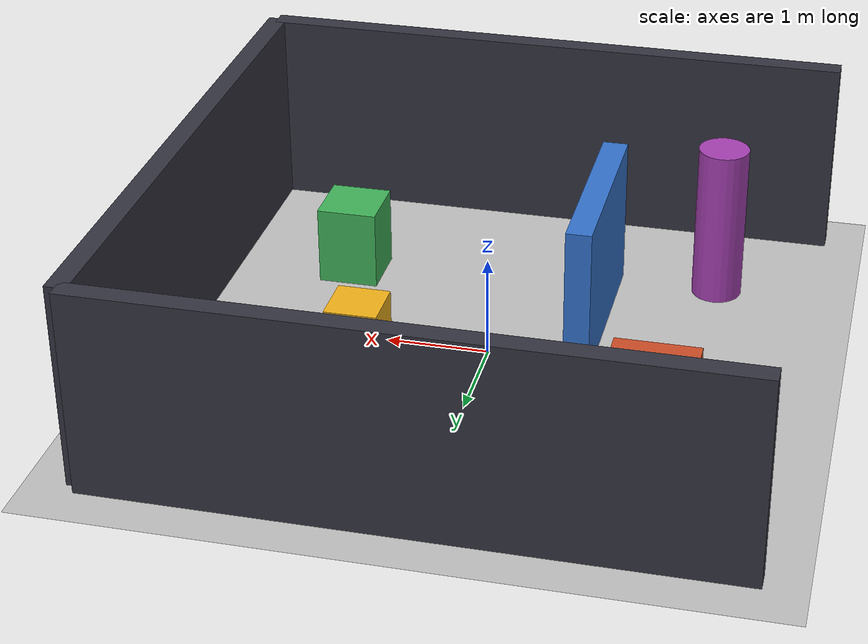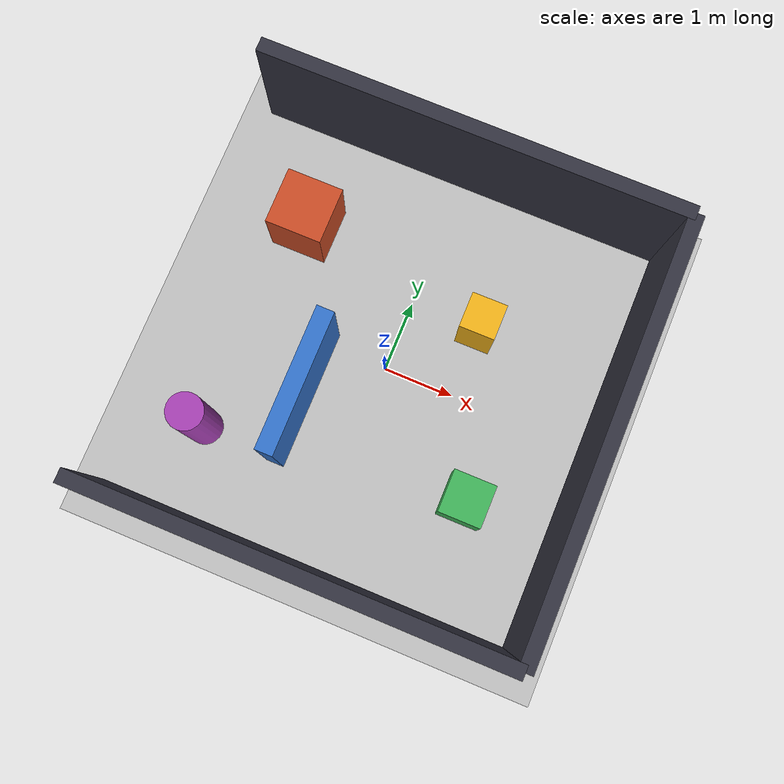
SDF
<?xml version="1.0" ?>
<sdf version="1.9">
  <world name="amr_world">
    <physics name="1ms" type="dart"><max_step_size>0.001</max_step_size><real_time_factor>1.0</real_time_factor></physics>
    <gravity>0 0 -9.81</gravity>
    <scene><ambient>0.8 0.8 0.8 1</ambient><background>0.53 0.81 0.92 1</background><shadows>true</shadows></scene>
    <light name="sun" type="directional"><cast_shadows>true</cast_shadows><pose>0 0 10 0 0 0</pose><diffuse>1 1 1 1</diffuse><specular>0.5 0.5 0.5 1</specular><direction>-0.5 0.1 -0.9</direction></light>
    <plugin filename="gz-sim-physics-system" name="gz::sim::systems::Physics"/>
    <plugin filename="gz-sim-user-commands-system" name="gz::sim::systems::UserCommands"/>
    <plugin filename="gz-sim-scene-broadcaster-system" name="gz::sim::systems::SceneBroadcaster"/>
    <plugin filename="gz-sim-sensors-system" name="gz::sim::systems::Sensors"><render_engine>ogre2</render_engine></plugin>
    <plugin filename="gz-sim-imu-system" name="gz::sim::systems::Imu"/>
    <model name="ground"><static>true</static><link name="link"><collision name="collision"><geometry><plane><normal>0 0 1</normal><size>100 100</size></plane></geometry></collision><visual name="visual"><geometry><plane><normal>0 0 1</normal><size>100 100</size></plane></geometry><material><ambient>0.7 0.7 0.7 1</ambient><diffuse>0.75 0.75 0.75 1</diffuse></material></visual></link></model>
    <model name="mapping_fixture">
      <static>true</static><link name="link">
        <collision name="north_wall"><pose>3 0 1 0 0 0</pose><geometry><box><size>0.2 6 2</size></box></geometry></collision>
        <visual name="north_wall_visual"><pose>3 0 1 0 0 0</pose><geometry><box><size>0.2 6 2</size></box></geometry><material><diffuse>0.2 0.2 0.25 1</diffuse></material></visual>
        <collision name="east_wall"><pose>0 -3 1 0 0 0</pose><geometry><box><size>6 0.2 2</size></box></geometry></collision>
        <visual name="east_wall_visual"><pose>0 -3 1 0 0 0</pose><geometry><box><size>6 0.2 2</size></box></geometry><material><diffuse>0.2 0.2 0.25 1</diffuse></material></visual>
        <collision name="west_wall"><pose>0 3 1 0 0 0</pose><geometry><box><size>6 0.2 2</size></box></geometry></collision>
        <visual name="west_wall_visual"><pose>0 3 1 0 0 0</pose><geometry><box><size>6 0.2 2</size></box></geometry><material><diffuse>0.2 0.2 0.25 1</diffuse></material></visual>
        <collision name="landmark"><pose>1 1 0.5 0 0 0</pose><geometry><box><size>0.5 0.5 1</size></box></geometry></collision>
        <visual name="landmark_visual"><pose>1 1 0.5 0 0 0</pose><geometry><box><size>0.5 0.5 1</size></box></geometry><material><diffuse>0.95 0.7 0.1 1</diffuse></material></visual>
        <collision name="divider"><pose>-0.9 -0.8 0.75 0 0 0</pose><geometry><box><size>0.25 2.0 1.5</size></box></geometry></collision>
        <visual name="divider_visual"><pose>-0.9 -0.8 0.75 0 0 0</pose><geometry><box><size>0.25 2.0 1.5</size></box></geometry><material><diffuse>0.2 0.45 0.8 1</diffuse></material></visual>
        <collision name="crate_a"><pose>-1.8 1.5 0.5 0 0 0</pose><geometry><box><size>0.8 0.8 1.0</size></box></geometry></collision>
        <visual name="crate_a_visual"><pose>-1.8 1.5 0.5 0 0 0</pose><geometry><box><size>0.8 0.8 1.0</size></box></geometry><material><diffuse>0.8 0.3 0.15 1</diffuse></material></visual>
        <collision name="crate_b"><pose>1.7 -1.3 0.4 0 0 0</pose><geometry><box><size>0.6 0.6 0.8</size></box></geometry></collision>
        <visual name="crate_b_visual"><pose>1.7 -1.3 0.4 0 0 0</pose><geometry><box><size>0.6 0.6 0.8</size></box></geometry><material><diffuse>0.25 0.7 0.35 1</diffuse></material></visual>
        <collision name="pillar"><pose>-2.0 -1.7 0.8 0 0 0</pose><geometry><cylinder><radius>0.25</radius><length>1.6</length></cylinder></geometry></collision>
        <visual name="pillar_visual"><pose>-2.0 -1.7 0.8 0 0 0</pose><geometry><cylinder><radius>0.25</radius><length>1.6</length></cylinder></geometry><material><diffuse>0.65 0.25 0.7 1</diffuse></material></visual>
      </link>
    </model>
  </world>
</sdf>
